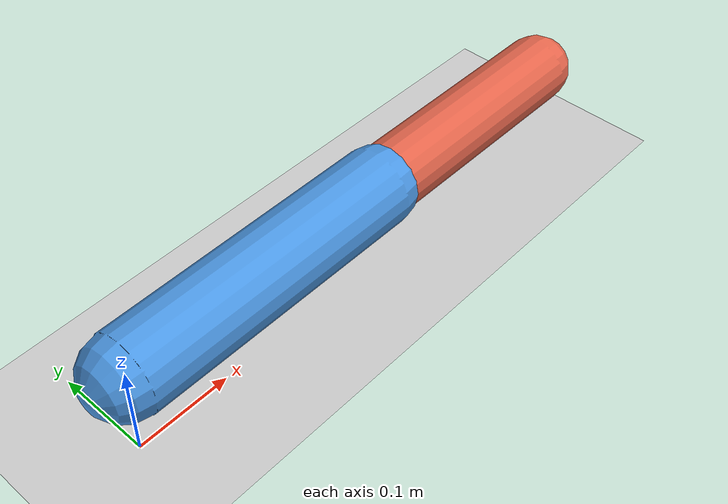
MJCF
<!-- 2-DOF planar robot arm for Phase 1 testing -->
<mujoco model="simple_arm">
  <option timestep="0.005" gravity="0 0 -9.81"/>

  <worldbody>
    <light pos="0 0 3" dir="0 0 -1"/>
    <geom name="floor" type="plane" size="2 2 0.1" rgba="0.8 0.8 0.8 1"/>

    <!-- Link 1 -->
    <body name="link1" pos="0 0 0.1">
      <joint name="joint1" type="hinge" axis="0 0 1" range="-3.14 3.14" damping="0.1"/>
      <geom type="capsule" fromto="0 0 0 0.3 0 0" size="0.04" rgba="0.3 0.6 0.9 1"/>

      <!-- Link 2 -->
      <body name="link2" pos="0.3 0 0">
        <joint name="joint2" type="hinge" axis="0 0 1" range="-2.5 2.5" damping="0.1"/>
        <geom type="capsule" fromto="0 0 0 0.25 0 0" size="0.035" rgba="0.9 0.4 0.3 1"/>

        <!-- End effector -->
        <body name="end_effector" pos="0.25 0 0">
          <geom type="sphere" size="0.03" rgba="0.2 0.9 0.2 1"/>
          <site name="ee_site" size="0.01"/>
        </body>
      </body>
    </body>
  </worldbody>

  <actuator>
    <position name="act_joint1" joint="joint1" kp="50" kv="5"/>
    <position name="act_joint2" joint="joint2" kp="50" kv="5"/>
  </actuator>
</mujoco>
